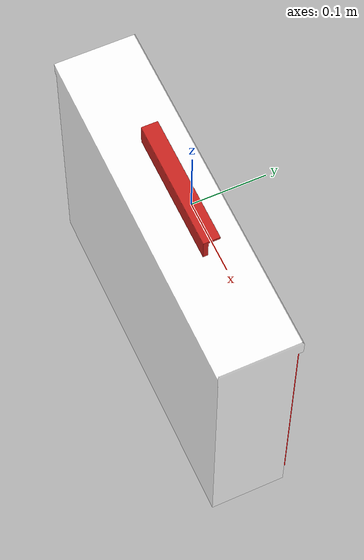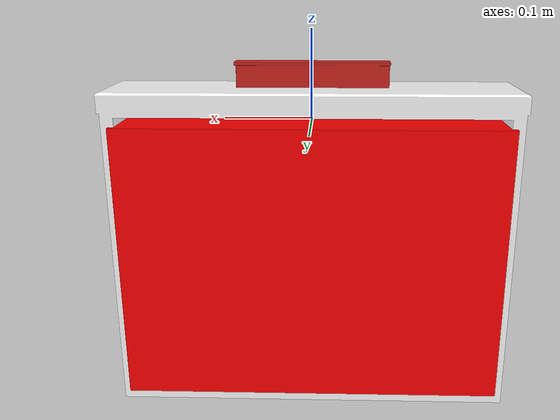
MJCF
<mujoco model="Drawer_45b02cbc">
  <compiler autolimits="true" boundmass="0.01" angle="radian"/>
  <default>
    <default class="/">
      <default class="__VISUAL_MJT__">
        <geom contype="0" conaffinity="0" group="0"/>
      </default>
      <default class="__STRUCTURAL_MJT__">
        <geom contype="8" conaffinity="15" group="4" friction="0.90000000000000002 0.90000000000000002 0.001" solref="0.025000000000000001 1" solimp="0.998 0.998 0.001"/>
      </default>
      <default class="__DYNAMIC_MJT__">
        <geom contype="1" conaffinity="15" group="4" friction="0.90000000000000002 0.90000000000000002 0.001" solref="0.025000000000000001 1" solimp="0.998 0.998 0.001"/>
      </default>
    </default>
  </default>
  <asset>
    <material name="material_WhiteWoodClean" class="/" specular="0.5" shininess="0.5" rgba="1 1 1 1"/>
    <mesh name="Drawer_45b02cbc_Mesh_01_ba67c1a2" class="/" file="Drawer_45b02cbc_Mesh_01_ba67c1a2/Drawer_45b02cbc_Mesh_01_ba67c1a2.obj" scale="1 1 1" inertia="legacy"/>
    <texture name="HammeredMetal_AlbedoTransparency_2" type="2d" file="HammeredMetal_AlbedoTransparency.png"/>
    <material name="material_HammeredMetal_AlbedoTransparency_2" class="/" texture="HammeredMetal_AlbedoTransparency_2" specular="0.5" shininess="0.5" rgba="1 0.93407709999999999 0.81617649999999997 1"/>
    <mesh name="Drawer_45b02cbc_handle_3_178mm_01_f103fe08" class="/" file="Drawer_45b02cbc_handle_3_178mm_01_f103fe08/Drawer_45b02cbc_handle_3_178mm_01_f103fe08.obj" scale="1 1 1" inertia="legacy"/>
  </asset>
  <worldbody>
    <body name="Drawer_45b02cbc">
      <body name="Drawer_45b02cbc_Mesh_01_ba67c1a2" pos="-0 -0.023100018501281738 0.010200023651123047" quat="1 0 0 0">
        <geom name="Drawer_45b02cbc_Mesh_01_ba67c1a2" class="__VISUAL_MJT__" type="mesh" material="material_WhiteWoodClean" mesh="Drawer_45b02cbc_Mesh_01_ba67c1a2"/>
        <joint name="Drawer_45b02cbc_joint" class="/" type="slide" pos="-0 0.023100018501281738 -0.010200023651123047" axis="0 0 1" stiffness="0" range="0 0.32500000000000001" damping="0.10000000000000001" frictionloss="0"/>
        <site name="Drawer_45b02cbc_Mesh_01_ba67c1a2_Receptacle_0" class="/" type="box" rgba="1 0 0 1" size="0.23000769317150116 0.052455160766839981 0.16838072240352631" pos="9.0122222900390625e-05 0.0032141804695129395 -0.18530416488647461" quat="0 1 0 0"/>
        <geom name="Drawer_45b02cbc_Mesh_01_ba67c1a2_PrimitiveCollider_0" class="__DYNAMIC_MJT__" type="box" size="0.23976141214370728 0.06102057546377182 0.011387884616851807" rgba="0 1 0 1" pos="-0 0.0032746791839599609 0.0012009143829345703" quat="0 1 0 0"/>
        <geom name="Drawer_45b02cbc_Mesh_01_ba67c1a2_PrimitiveCollider_1" class="__DYNAMIC_MJT__" type="box" size="0.23976141214370728 0.057310253381729126 0.007381439208984375" rgba="0 1 0 1" pos="-0 0.00015801191329956055 -0.37006235122680664" quat="0 1 0 0"/>
        <geom name="Drawer_45b02cbc_Mesh_01_ba67c1a2_PrimitiveCollider_2" class="__DYNAMIC_MJT__" type="box" size="0.19288793206214905 0.056740082800388336 0.0073814410716295242" rgba="0 1 0 1" pos="-0.2313377857208252 0.00072818994522094727 -0.18457365036010742" quat="0 0.70710678118654757 0 0.70710678118654757"/>
        <geom name="Drawer_45b02cbc_Mesh_01_ba67c1a2_PrimitiveCollider_3" class="__DYNAMIC_MJT__" type="box" size="0.19288802146911621 0.056740082800388336 0.0073814443312585354" rgba="0 1 0 1" pos="0.23086214065551758 0.00072818994522094727 -0.18457365036010742" quat="0 0.70710678118654757 0 0.70710678118654757"/>
        <geom name="Drawer_45b02cbc_Mesh_01_ba67c1a2_PrimitiveCollider_4" class="__DYNAMIC_MJT__" type="box" size="0.19288797676563263 0.23735302686691284 0.0040994221344590187" rgba="0 1 0 1" pos="-0.00072526931762695312 -0.05309218168258667 -0.18457341194152832" quat="-0.49999994039535345 0.49999999999999822 0.500000059604643 0.49999999999999822"/>
        <body name="Drawer_45b02cbc_handle_3_178mm_01_f103fe08" pos="-0 0 0.019999980926513672" quat="1 0 0 0">
          <geom name="Drawer_45b02cbc_handle_3_178mm_01_f103fe08" class="__VISUAL_MJT__" type="mesh" material="material_HammeredMetal_AlbedoTransparency_2" mesh="Drawer_45b02cbc_handle_3_178mm_01_f103fe08"/>
          <geom name="Drawer_45b02cbc_handle_3_178mm_01_f103fe08_PrimitiveCollider_0" class="__DYNAMIC_MJT__" type="box" size="0.088752083480358124 0.0035549115855246782 0.016431529074907303" rgba="0 1 0 1" pos="-0 0 0.016289949417114258" quat="0 1 0 0"/>
          <geom name="Drawer_45b02cbc_handle_3_178mm_01_f103fe08_PrimitiveCollider_1" class="__DYNAMIC_MJT__" type="box" size="0.088752083480358124 0.0077598136849701405 0.0019227256998419762" rgba="0 1 0 1" pos="-0 0.011284887790679932 0.030798912048339844" quat="0 1 0 0"/>
        </body>
      </body>
    </body>
  </worldbody>
  <contact>
    <exclude name="//unnamed_contact_0" body1="Drawer_45b02cbc_Mesh_01_ba67c1a2" body2="Drawer_45b02cbc_handle_3_178mm_01_f103fe08"/>
  </contact>
</mujoco>
